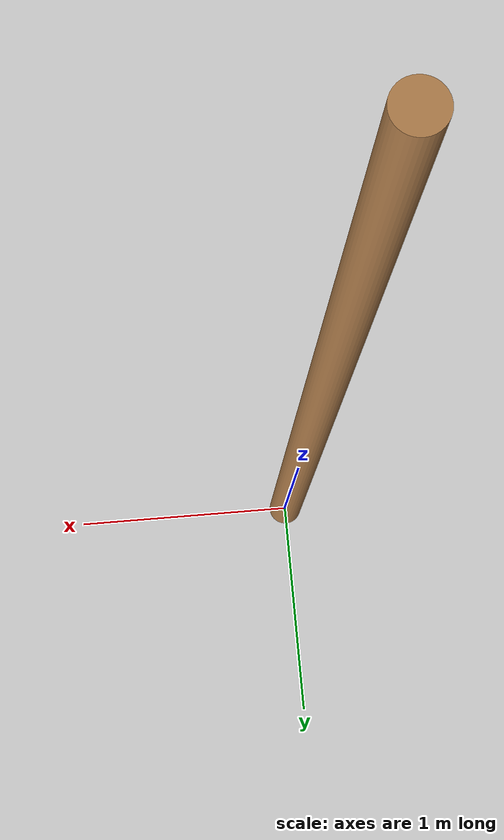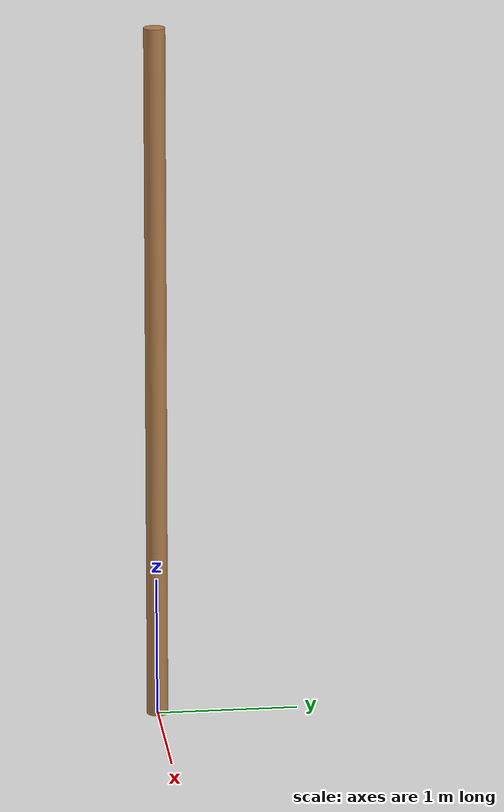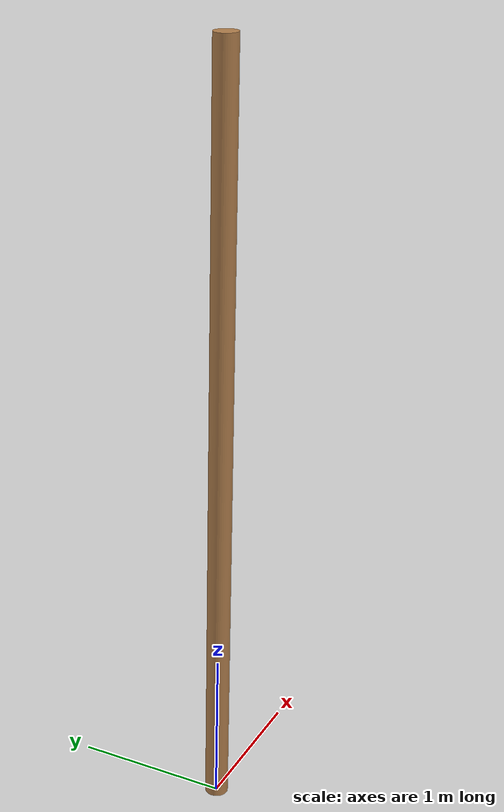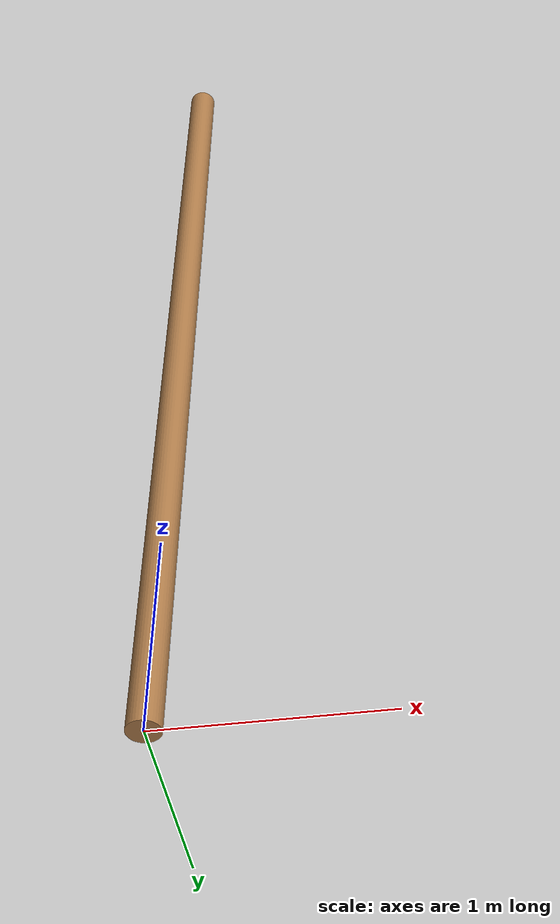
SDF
<?xml version="1.0" ?>

  <sdf version="1.5">
    <model name="arduwoodpecker_tree">
      <static>true</static>

      <link name="tree">
      <pose>0 0 0.0  0 0 0</pose>
      <inertial>
        <pose>0 0 0 0 0 0</pose>
        <mass>3.5</mass>
        <inertia>
          <ixx>0.2</ixx>
          <iyy>0.2</iyy>
          <izz>0.1</izz>
          <ixy>0</ixy>
          <ixz>0</ixz>
          <iyz>0</iyz>
        </inertia>
      </inertial>
      <collision name="tree_collision">
        <pose>0 0 0 0 0 0</pose>
        <geometry>
          <mesh>
            <uri>model://arduwoodpecker_tree/meshes/tree.STL</uri>
          </mesh>
        </geometry>
        <surface>
          <contact>
            <ode>
              <max_vel>100.0</max_vel>
              <min_depth>0.001</min_depth>
            </ode>
          </contact>
          <friction>
            <ode>
              <mu>100000.0</mu>
              <mu2>100000.0</mu2>
            </ode>
          </friction>
        </surface>
      </collision>
      <visual name="tree_visual">
        <geometry>
          <mesh>
            <uri>model://arduwoodpecker_tree/meshes/tree.STL</uri>
          </mesh>
        </geometry>
        <material>
          <script>
            <name>Gazebo/WoodFloor</name>
          </script>
        </material>
      </visual>
    </link>
  </model>
</sdf>
